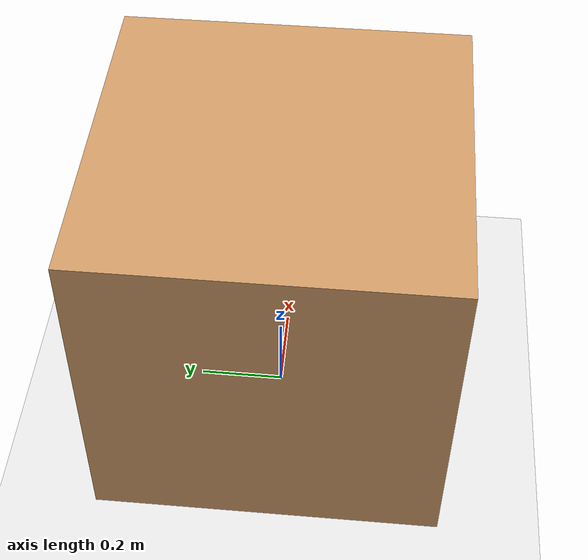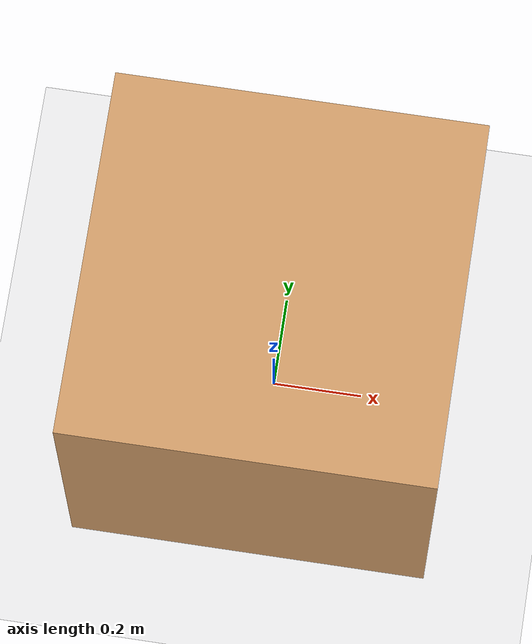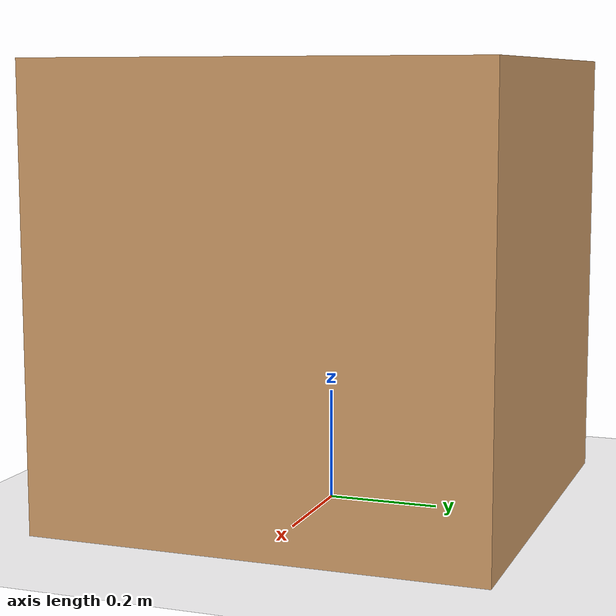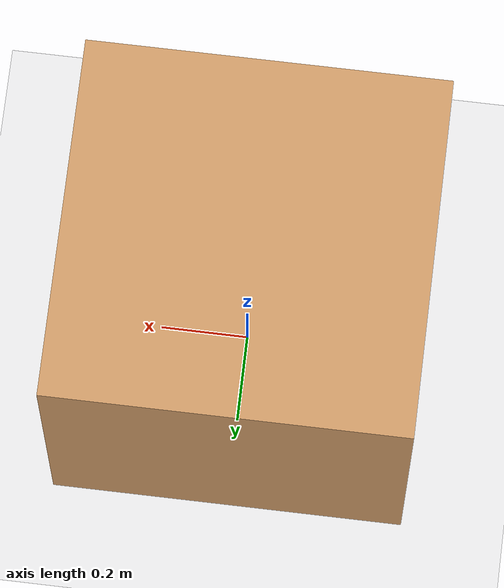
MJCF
<!-- Simple plane environment -->
<mujoco>
  <asset>
    <material name="grid" rgba="0.8 0.8 0.8 1"/>
    <material name="wall" rgba="0.7 0.7 0.7 1"/>
  </asset>

  <worldbody>
    <!-- Ground plane -->
    <geom name="ground" type="plane" size="5 5 0.1" material="grid" friction="1 0.005 0.0001"/>

    <!-- Lighting -->
    <light diffuse=".5 .5 .5" pos="0 0 3" dir="0 0 -1"/>

    <!-- World coordinate frame at origin -->
    <site name="world_frame" pos="0 0 0" size="0.1" type="sphere" rgba="1 1 1 0.3"/>
    <geom name="x_axis" type="cylinder" pos="0.05 0 0" size="0.005 0.1" rgba="1 0 0 1" quat="0.707 0 0.707 0"/>
    <geom name="y_axis" type="cylinder" pos="0 0.05 0" size="0.005 0.1" rgba="0 1 0 1" quat="0.707 0.707 0 0"/>
    <geom name="z_axis" type="cylinder" pos="0 0 0.05" size="0.005 0.1" rgba="0 0 1 1"/>

    <!-- Table -->
    <body name="table" pos="0.0 0 0.4">
      <geom type="box" size="0.4 0.4 0.4" rgba="0.8 0.6 0.4 1" friction="1 0.005 0.0001"/>
    </body>
  </worldbody>
</mujoco>
